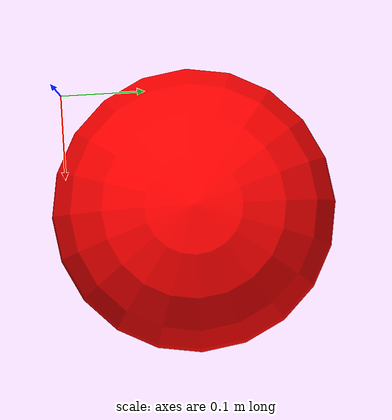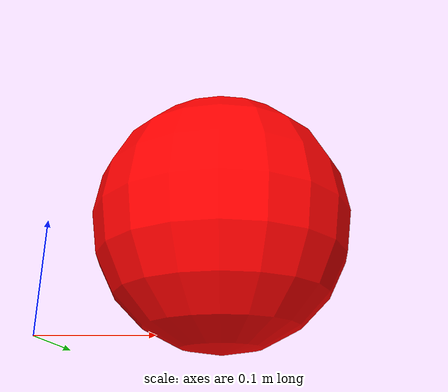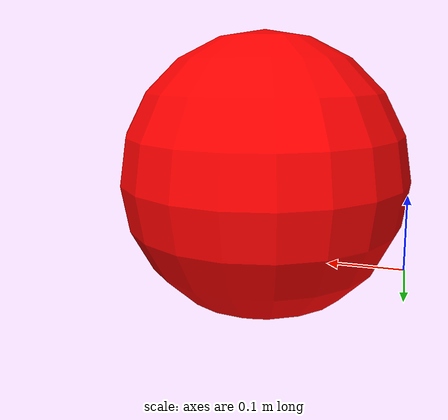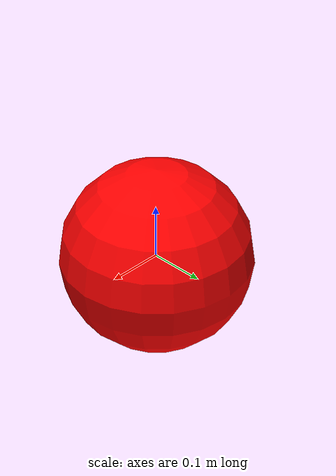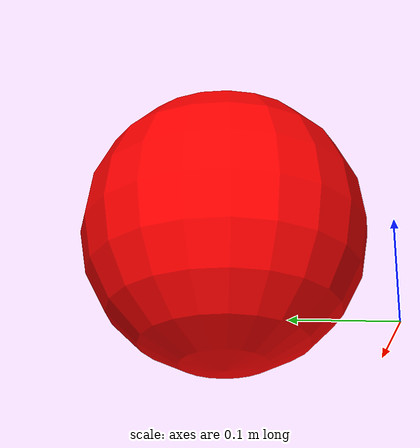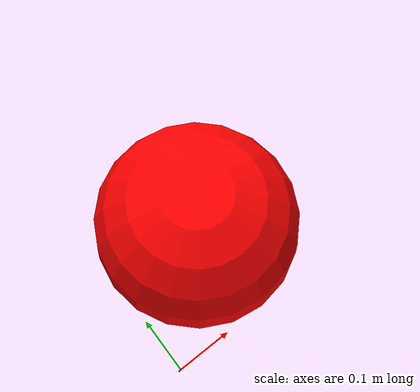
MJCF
<?xml version="1.0" encoding="utf-8"?>
<mujoco>
    <option timestep="0.005"/>

    <worldbody>
        <light directional='true' pos='0 0 10.0' dir='0 0 -1' ambient="0.3 0.3 0.3"/>
        <body name="particle" pos="0.15 0.15 0.15">
            <joint axis="1 0 0" damping="0" frictionloss="0" name="slide0" pos="0 0 0" type="slide"></joint>
            <joint axis="0 1 0" damping="0" frictionloss="0" name="slide1" pos="0 0 0" type="slide"></joint>
            <joint axis="0 0 1" damping="0" frictionloss="0" name="slide2" pos="0 0 0" type="slide"></joint>
            <joint axis="1 0 0" damping="0" frictionloss="0" name="hinge0" pos="0 0 0" type="hinge"></joint>
            <joint axis="0 1 0" damping="0" frictionloss="0" name="hinge1" pos="0 0 0" type="hinge"></joint>
            <joint axis="0 0 1" damping="0" frictionloss="0" name="hinge2" pos="0 0 0" type="hinge"></joint>

            <geom name="sphere" mass="1" pos="0 0 0" rgba="1 0 0 1" size="0.15" type="sphere"></geom>
        </body>
        <body name="annotation:outer_bound" pos="0.15 0.15 0.15">
            <geom conaffinity="0" contype="0" mass="0" pos="0 0 0" rgba="0.417 0.7203 0.0001 0.0"
                  size="0.0001 0.0001 0.0001" type="box"></geom>
        </body>
    </worldbody>
    <actuator>
        <motor gear="30" joint="hinge0"></motor>
        <motor gear="30" joint="hinge1"></motor>
    </actuator>
</mujoco>
